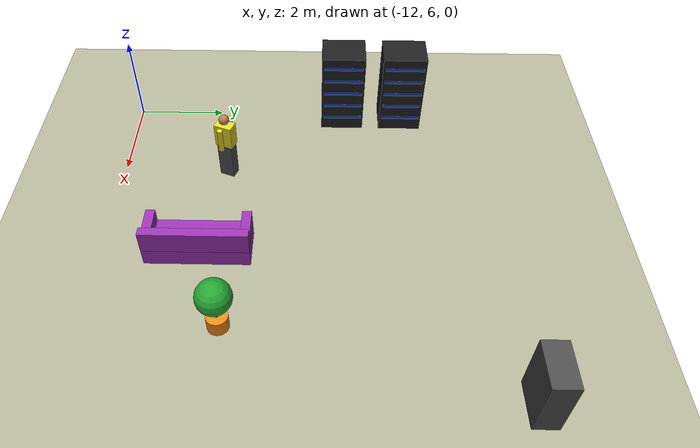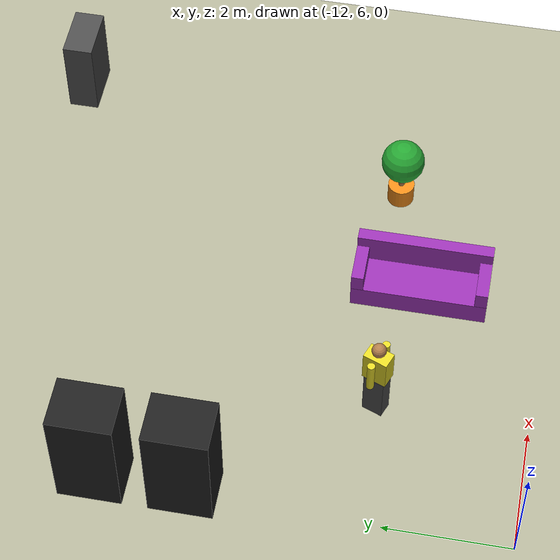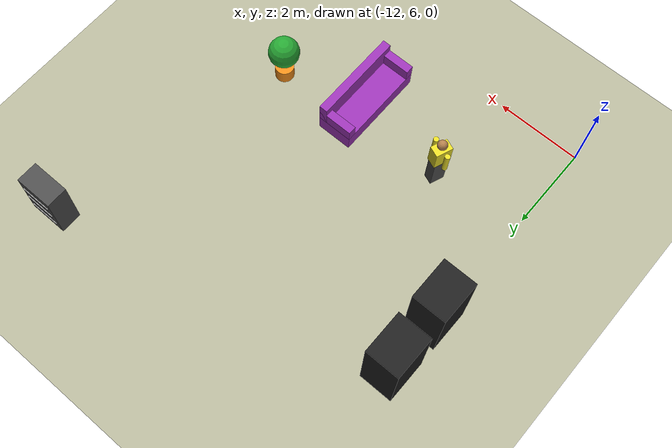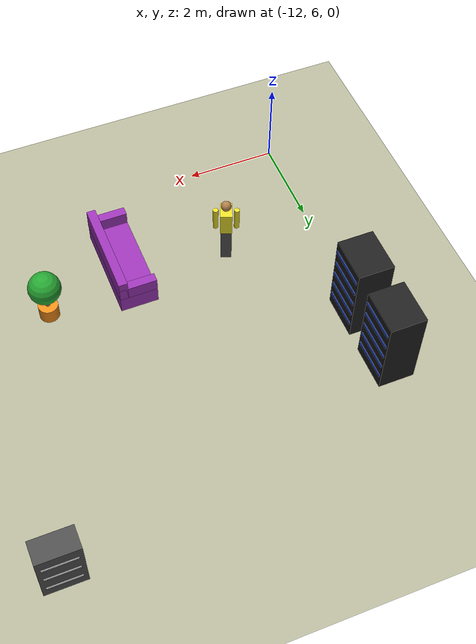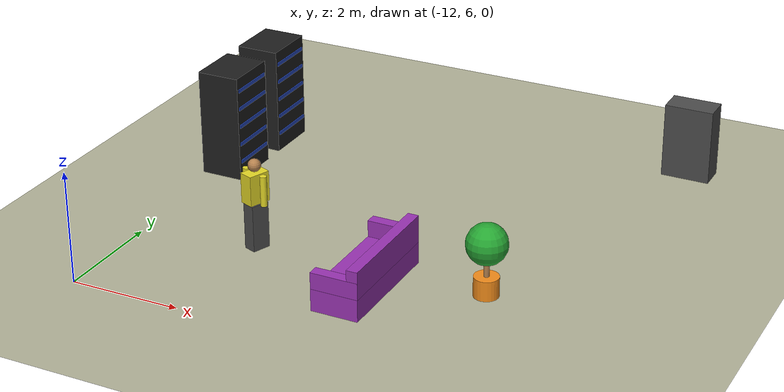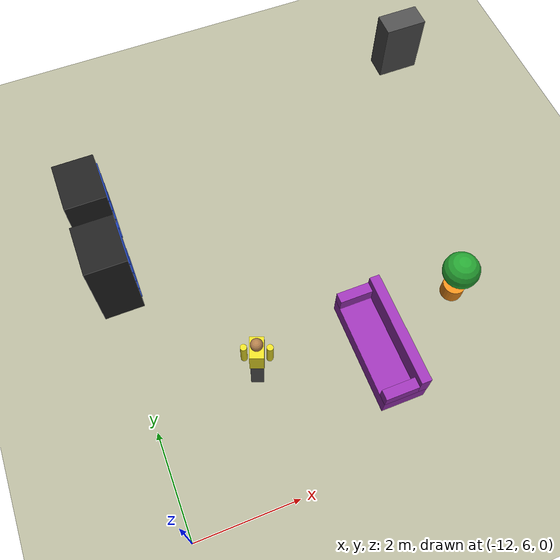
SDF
<sdf version="1.6">
 <world name="smart_building">
  <model name="ground_plane">
   <static>true</static>
   <link name="link">
    <collision name="collision">
     <geometry><plane><normal>0 0 1</normal><size>100 100</size></plane></geometry>
     <surface><friction><ode><mu>1.0</mu><mu2>1.0</mu2></ode></friction></surface>
    </collision>
    <visual name="visual">
     <geometry><plane><normal>0 0 1</normal><size>100 100</size></plane></geometry>
     <material>
      <script><uri>file://media/materials/scripts/gazebo.material</uri><name>Gazebo/Residential</name></script>
     </material>
    </visual>
   </link>
  </model>
  <model name="lounge_sofa_b">
   <static>true</static>
   <pose>-7.6000 8.0000 0.0000 0.0000 0.0000 1.5708</pose>
   <link name="link_0">
    <pose>0.0000 0.0000 0.2000 0.0000 0.0000 0.0000</pose>
    <collision name="link_0_collision">
     <geometry><box><size>2.2000 0.8500 0.4000</size></box></geometry>
    </collision>
    <visual name="link_0_visual">
     <geometry><box><size>2.2000 0.8500 0.4000</size></box></geometry>
     <material>
      <script><uri>file://media/materials/scripts/gazebo.material</uri><name>Gazebo/Purple</name></script>
     </material>
    </visual>
   </link>
   <link name="link_1">
    <pose>0.0000 -0.3300 0.6500 0.0000 0.0000 0.0000</pose>
    <collision name="link_1_collision">
     <geometry><box><size>2.2000 0.2000 0.5000</size></box></geometry>
    </collision>
    <visual name="link_1_visual">
     <geometry><box><size>2.2000 0.2000 0.5000</size></box></geometry>
     <material>
      <script><uri>file://media/materials/scripts/gazebo.material</uri><name>Gazebo/Purple</name></script>
     </material>
    </visual>
   </link>
   <link name="link_2">
    <pose>-1.0000 0.0000 0.5500 0.0000 0.0000 0.0000</pose>
    <collision name="link_2_collision">
     <geometry><box><size>0.2000 0.8500 0.3000</size></box></geometry>
    </collision>
    <visual name="link_2_visual">
     <geometry><box><size>0.2000 0.8500 0.3000</size></box></geometry>
     <material>
      <script><uri>file://media/materials/scripts/gazebo.material</uri><name>Gazebo/Purple</name></script>
     </material>
    </visual>
   </link>
   <link name="link_3">
    <pose>1.0000 0.0000 0.5500 0.0000 0.0000 0.0000</pose>
    <collision name="link_3_collision">
     <geometry><box><size>0.2000 0.8500 0.3000</size></box></geometry>
    </collision>
    <visual name="link_3_visual">
     <geometry><box><size>0.2000 0.8500 0.3000</size></box></geometry>
     <material>
      <script><uri>file://media/materials/scripts/gazebo.material</uri><name>Gazebo/Purple</name></script>
     </material>
    </visual>
   </link>
  </model>
  <model name="person_lounge_1">
   <static>true</static>
   <pose>-9.9000 8.4000 0.0000 0.0000 0.0000 1.2000</pose>
   <link name="link_0">
    <pose>0.0000 0.0000 0.4250 0.0000 0.0000 0.0000</pose>
    <collision name="link_0_collision">
     <geometry><box><size>0.3400 0.2400 0.8500</size></box></geometry>
    </collision>
    <visual name="link_0_visual">
     <geometry><box><size>0.3400 0.2400 0.8500</size></box></geometry>
     <material>
      <script><uri>file://media/materials/scripts/gazebo.material</uri><name>Gazebo/DarkGrey</name></script>
     </material>
    </visual>
   </link>
   <link name="link_1">
    <pose>0.0000 0.0000 1.1500 0.0000 0.0000 0.0000</pose>
    <collision name="link_1_collision">
     <geometry><box><size>0.4000 0.2600 0.5500</size></box></geometry>
    </collision>
    <visual name="link_1_visual">
     <geometry><box><size>0.4000 0.2600 0.5500</size></box></geometry>
     <material>
      <script><uri>file://media/materials/scripts/gazebo.material</uri><name>Gazebo/Yellow</name></script>
     </material>
    </visual>
   </link>
   <link name="link_2">
    <pose>0.0000 0.2300 1.1500 0.0000 0.0000 0.0000</pose>
    <collision name="link_2_collision">
     <geometry><cylinder><radius>0.0600</radius><length>0.5500</length></cylinder></geometry>
    </collision>
    <visual name="link_2_visual">
     <geometry><cylinder><radius>0.0600</radius><length>0.5500</length></cylinder></geometry>
     <material>
      <script><uri>file://media/materials/scripts/gazebo.material</uri><name>Gazebo/Yellow</name></script>
     </material>
    </visual>
   </link>
   <link name="link_3">
    <pose>0.0000 -0.2300 1.1500 0.0000 0.0000 0.0000</pose>
    <collision name="link_3_collision">
     <geometry><cylinder><radius>0.0600</radius><length>0.5500</length></cylinder></geometry>
    </collision>
    <visual name="link_3_visual">
     <geometry><cylinder><radius>0.0600</radius><length>0.5500</length></cylinder></geometry>
     <material>
      <script><uri>file://media/materials/scripts/gazebo.material</uri><name>Gazebo/Yellow</name></script>
     </material>
    </visual>
   </link>
   <link name="link_4">
    <pose>0.0000 0.0000 1.5500 0.0000 0.0000 0.0000</pose>
    <collision name="link_4_collision"><geometry><sphere><radius>0.1150</radius></sphere></geometry></collision>
    <visual name="link_4_visual">
     <geometry><sphere><radius>0.1150</radius></sphere></geometry>
     <material>
      <script><uri>file://media/materials/scripts/gazebo.material</uri><name>Gazebo/Wood</name></script>
     </material>
    </visual>
   </link>
  </model>
  <model name="plant_reception_2">
   <static>true</static>
   <pose>-5.7000 8.6000 0.0000 0.0000 0.0000 0.0000</pose>
   <link name="link_0">
    <pose>0.0000 0.0000 0.1800 0.0000 0.0000 0.0000</pose>
    <collision name="link_0_collision">
     <geometry><cylinder><radius>0.2200</radius><length>0.3600</length></cylinder></geometry>
    </collision>
    <visual name="link_0_visual">
     <geometry><cylinder><radius>0.2200</radius><length>0.3600</length></cylinder></geometry>
     <material>
      <script><uri>file://media/materials/scripts/gazebo.material</uri><name>Gazebo/Orange</name></script>
     </material>
    </visual>
   </link>
   <link name="link_1">
    <pose>0.0000 0.0000 0.5000 0.0000 0.0000 0.0000</pose>
    <collision name="link_1_collision">
     <geometry><cylinder><radius>0.0500</radius><length>0.4000</length></cylinder></geometry>
    </collision>
    <visual name="link_1_visual">
     <geometry><cylinder><radius>0.0500</radius><length>0.4000</length></cylinder></geometry>
     <material>
      <script><uri>file://media/materials/scripts/gazebo.material</uri><name>Gazebo/Wood</name></script>
     </material>
    </visual>
   </link>
   <link name="link_2">
    <pose>0.0000 0.0000 0.9500 0.0000 0.0000 0.0000</pose>
    <collision name="link_2_collision"><geometry><sphere><radius>0.3600</radius></sphere></geometry></collision>
    <visual name="link_2_visual">
     <geometry><sphere><radius>0.3600</radius></sphere></geometry>
     <material>
      <script><uri>file://media/materials/scripts/gazebo.material</uri><name>Gazebo/Green</name></script>
     </material>
    </visual>
   </link>
  </model>
  <model name="server_rack_b_0">
   <static>true</static>
   <pose>-11.9000 11.0000 0.0000 0.0000 0.0000 3.1416</pose>
   <link name="link_0">
    <pose>0.0000 0.0000 1.0000 0.0000 0.0000 0.0000</pose>
    <collision name="link_0_collision">
     <geometry><box><size>0.8000 1.0000 2.0000</size></box></geometry>
    </collision>
    <visual name="link_0_visual">
     <geometry><box><size>0.8000 1.0000 2.0000</size></box></geometry>
     <material>
      <script><uri>file://media/materials/scripts/gazebo.material</uri><name>Gazebo/FlatBlack</name></script>
     </material>
    </visual>
   </link>
   <link name="link_1">
    <pose>-0.4100 0.0000 0.3500 0.0000 0.0000 0.0000</pose>
    <visual name="link_1_visual">
     <geometry><box><size>0.0200 0.9000 0.0600</size></box></geometry>
     <material>
      <script><uri>file://media/materials/scripts/gazebo.material</uri><name>Gazebo/BlueGlow</name></script>
     </material>
    </visual>
   </link>
   <link name="link_2">
    <pose>-0.4100 0.0000 0.7000 0.0000 0.0000 0.0000</pose>
    <visual name="link_2_visual">
     <geometry><box><size>0.0200 0.9000 0.0600</size></box></geometry>
     <material>
      <script><uri>file://media/materials/scripts/gazebo.material</uri><name>Gazebo/BlueGlow</name></script>
     </material>
    </visual>
   </link>
   <link name="link_3">
    <pose>-0.4100 0.0000 1.0500 0.0000 0.0000 0.0000</pose>
    <visual name="link_3_visual">
     <geometry><box><size>0.0200 0.9000 0.0600</size></box></geometry>
     <material>
      <script><uri>file://media/materials/scripts/gazebo.material</uri><name>Gazebo/BlueGlow</name></script>
     </material>
    </visual>
   </link>
   <link name="link_4">
    <pose>-0.4100 0.0000 1.4000 0.0000 0.0000 0.0000</pose>
    <visual name="link_4_visual">
     <geometry><box><size>0.0200 0.9000 0.0600</size></box></geometry>
     <material>
      <script><uri>file://media/materials/scripts/gazebo.material</uri><name>Gazebo/BlueGlow</name></script>
     </material>
    </visual>
   </link>
   <link name="link_5">
    <pose>-0.4100 0.0000 1.7500 0.0000 0.0000 0.0000</pose>
    <visual name="link_5_visual">
     <geometry><box><size>0.0200 0.9000 0.0600</size></box></geometry>
     <material>
      <script><uri>file://media/materials/scripts/gazebo.material</uri><name>Gazebo/BlueGlow</name></script>
     </material>
    </visual>
   </link>
  </model>
  <model name="server_rack_b_1">
   <static>true</static>
   <pose>-11.9000 12.4000 0.0000 0.0000 0.0000 3.1416</pose>
   <link name="link_0">
    <pose>0.0000 0.0000 1.0000 0.0000 0.0000 0.0000</pose>
    <collision name="link_0_collision">
     <geometry><box><size>0.8000 1.0000 2.0000</size></box></geometry>
    </collision>
    <visual name="link_0_visual">
     <geometry><box><size>0.8000 1.0000 2.0000</size></box></geometry>
     <material>
      <script><uri>file://media/materials/scripts/gazebo.material</uri><name>Gazebo/FlatBlack</name></script>
     </material>
    </visual>
   </link>
   <link name="link_1">
    <pose>-0.4100 0.0000 0.3500 0.0000 0.0000 0.0000</pose>
    <visual name="link_1_visual">
     <geometry><box><size>0.0200 0.9000 0.0600</size></box></geometry>
     <material>
      <script><uri>file://media/materials/scripts/gazebo.material</uri><name>Gazebo/BlueGlow</name></script>
     </material>
    </visual>
   </link>
   <link name="link_2">
    <pose>-0.4100 0.0000 0.7000 0.0000 0.0000 0.0000</pose>
    <visual name="link_2_visual">
     <geometry><box><size>0.0200 0.9000 0.0600</size></box></geometry>
     <material>
      <script><uri>file://media/materials/scripts/gazebo.material</uri><name>Gazebo/BlueGlow</name></script>
     </material>
    </visual>
   </link>
   <link name="link_3">
    <pose>-0.4100 0.0000 1.0500 0.0000 0.0000 0.0000</pose>
    <visual name="link_3_visual">
     <geometry><box><size>0.0200 0.9000 0.0600</size></box></geometry>
     <material>
      <script><uri>file://media/materials/scripts/gazebo.material</uri><name>Gazebo/BlueGlow</name></script>
     </material>
    </visual>
   </link>
   <link name="link_4">
    <pose>-0.4100 0.0000 1.4000 0.0000 0.0000 0.0000</pose>
    <visual name="link_4_visual">
     <geometry><box><size>0.0200 0.9000 0.0600</size></box></geometry>
     <material>
      <script><uri>file://media/materials/scripts/gazebo.material</uri><name>Gazebo/BlueGlow</name></script>
     </material>
    </visual>
   </link>
   <link name="link_5">
    <pose>-0.4100 0.0000 1.7500 0.0000 0.0000 0.0000</pose>
    <visual name="link_5_visual">
     <geometry><box><size>0.0200 0.9000 0.0600</size></box></geometry>
     <material>
      <script><uri>file://media/materials/scripts/gazebo.material</uri><name>Gazebo/BlueGlow</name></script>
     </material>
    </visual>
   </link>
  </model>
  <model name="office_cabinet_0">
   <static>true</static>
   <pose>-4.2000 14.4000 0.0000 0.0000 0.0000 3.1416</pose>
   <link name="link_0">
    <pose>0.0000 0.0000 0.7000 0.0000 0.0000 0.0000</pose>
    <collision name="link_0_collision">
     <geometry><box><size>0.9000 0.5000 1.4000</size></box></geometry>
    </collision>
    <visual name="link_0_visual">
     <geometry><box><size>0.9000 0.5000 1.4000</size></box></geometry>
     <material>
      <script><uri>file://media/materials/scripts/gazebo.material</uri><name>Gazebo/DarkGrey</name></script>
     </material>
    </visual>
   </link>
   <link name="link_1">
    <pose>0.0000 -0.2600 0.3000 0.0000 0.0000 0.0000</pose>
    <visual name="link_1_visual">
     <geometry><box><size>0.7200 0.0300 0.0400</size></box></geometry>
     <material>
      <script><uri>file://media/materials/scripts/gazebo.material</uri><name>Gazebo/Grey</name></script>
     </material>
    </visual>
   </link>
   <link name="link_2">
    <pose>0.0000 -0.2600 0.7000 0.0000 0.0000 0.0000</pose>
    <visual name="link_2_visual">
     <geometry><box><size>0.7200 0.0300 0.0400</size></box></geometry>
     <material>
      <script><uri>file://media/materials/scripts/gazebo.material</uri><name>Gazebo/Grey</name></script>
     </material>
    </visual>
   </link>
   <link name="link_3">
    <pose>0.0000 -0.2600 1.1000 0.0000 0.0000 0.0000</pose>
    <visual name="link_3_visual">
     <geometry><box><size>0.7200 0.0300 0.0400</size></box></geometry>
     <material>
      <script><uri>file://media/materials/scripts/gazebo.material</uri><name>Gazebo/Grey</name></script>
     </material>
    </visual>
   </link>
  </model>
 </world>
</sdf>
